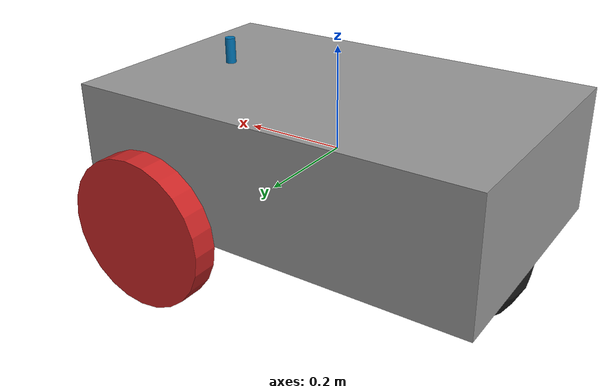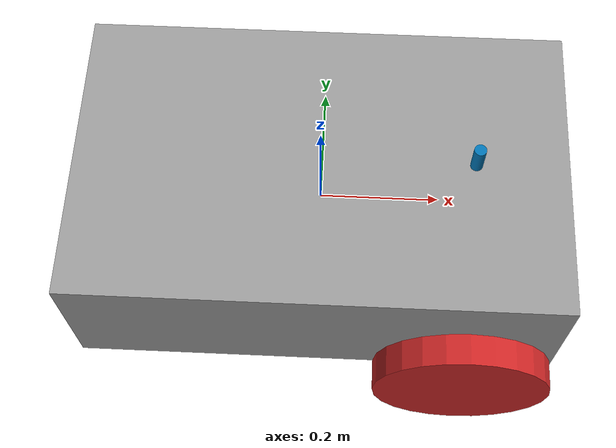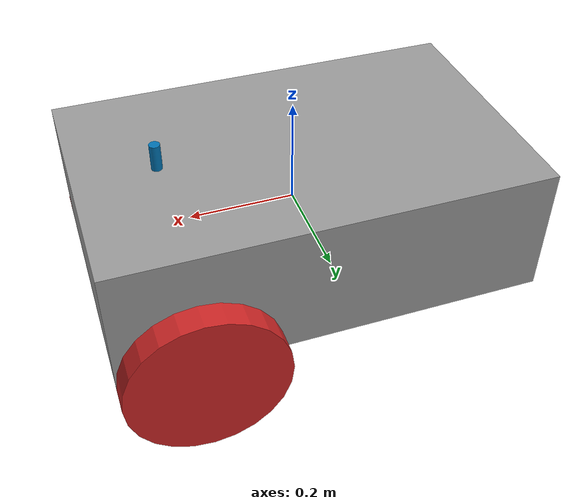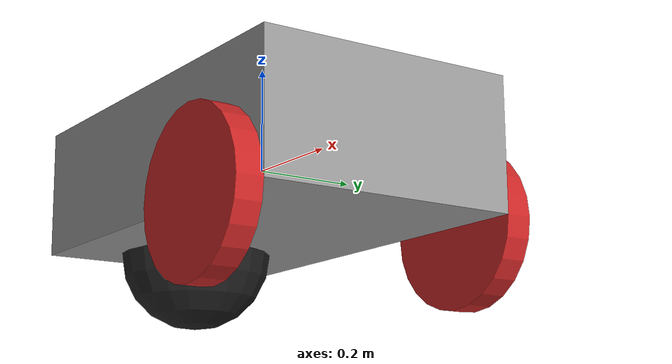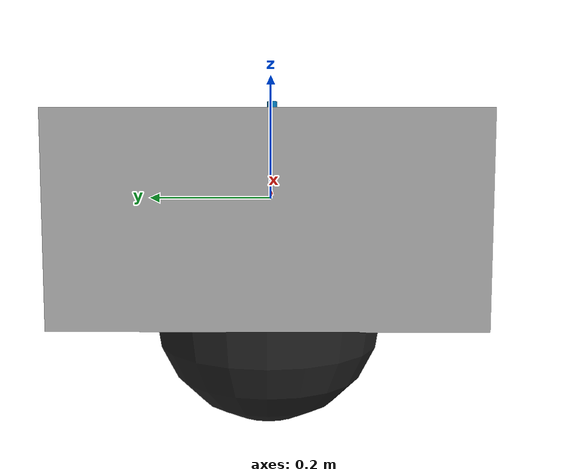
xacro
<?xml version="1.0"?>
<robot xmlns:xacro="http://www.ros.org/wiki/xacro" name="my_mobile">

  <!-- xacro properties -->
  <xacro:property name="chassis_length" value="0.8"/>
  <xacro:property name="chassis_width" value="0.5"/>
  <xacro:property name="chassis_height" value="0.25"/>
  <xacro:property name="wheel_height" value="0.05"/>
  <xacro:property name="wheel_radius" value="0.15"/>
  <xacro:property name="caster_radius" value="0.15"/>
  <xacro:property name="wheels_front_offset" value="0.25"/>
  <xacro:property name="caster_back_offset" value="0.25"/>
  <xacro:property name="chassis_mass" value="5.0"/>
  <xacro:property name="caster_mass" value="0.01"/>
  <xacro:property name="wheel_mass" value="1.0"/>

  <!-- materials -->
  <xacro:include filename="materials.xml"/>

  <!-- gazebo properties -->
  <xacro:include filename="gazebo.xml"/>

  <!-- links -->
  <link name="chassis">
    <visual>
      <geometry>
        <box size="${chassis_length} ${chassis_width} ${chassis_height}"/>
      </geometry>
      <origin rpy="0 0 0" xyz="0 0 0"/>
      <material name="grey"/>
    </visual>

    <collision>
      <geometry>
        <box size="${chassis_length} ${chassis_width} ${chassis_height}"/>
      </geometry>
      <origin rpy="0 0 0" xyz="0 0 0"/>
    </collision>

    <inertial>
      <mass value="${chassis_mass}"/>
      <inertia ixx="0.01" iyy="0.01" izz="0.01" ixy="0" ixz="0" iyz="0"/>
    </inertial>
  </link>

  <link name="caster">
    <visual>
      <geometry>
        <sphere radius="${caster_radius}"/>
      </geometry>
      <origin rpy="0 0 0" xyz="0 0 0"/>
      <material name="black"/>
    </visual>

    <collision>
      <geometry>
        <sphere radius="${caster_radius}"/>
      </geometry>
      <origin rpy="0 0 0" xyz="0 0 0"/>
      <surface>
        <friction>
          <ode>
            <mu>0</mu>
            <mu2>0</mu2>
            <slip1>1.0</slip1>
            <slip2>1.0</slip2>
          </ode>
        </friction>
      </surface>
    </collision>

    <inertial>
      <mass value="${caster_mass}"/>
      <inertia ixx="1e-6" iyy="1e-6" izz="1e-6" ixy="0" ixz="0" iyz="0"/>
    </inertial>
  </link>

  <link name="left_wheel">
    <visual>
      <geometry>
        <cylinder length="${wheel_height}" radius="${wheel_radius}"/>
      </geometry>
      <origin rpy="0 0 0" xyz="0 0 ${wheel_height/2}"/>
      <material name="red"/>
    </visual>

    <collision>
      <geometry>
        <cylinder length="${wheel_height}" radius="${wheel_radius}"/>
      </geometry>
      <origin rpy="0 0 0" xyz="0 0 ${wheel_height/2}"/>
      <surface>
        <friction>
          <ode>
            <mu>100000</mu>
            <mu2>100000</mu2>
            <slip1>0</slip1>
            <slip2>0</slip2>
          </ode>
        </friction>
      </surface>
    </collision>

    <inertial>
      <mass value="${wheel_mass}"/>
      <inertia ixx="0.001" iyy="0.001" izz="0.001" ixy="0" ixz="0" iyz="0"/>
    </inertial>
  </link>

  <link name="right_wheel">
    <visual>
      <geometry>
        <cylinder length="${wheel_height}" radius="${wheel_radius}"/>
      </geometry>
      <origin rpy="0 0 0" xyz="0 0 ${-wheel_height/2}"/>
      <material name="red"/>
    </visual>

    <collision>
      <geometry>
        <cylinder length="${wheel_height}" radius="${wheel_radius}"/>
      </geometry>
      <origin rpy="0 0 0" xyz="0 0 ${-wheel_height/2}"/>
      <surface>
        <friction>
          <ode>
            <mu>100000</mu>
            <mu2>100000</mu2>
            <slip1>0</slip1>
            <slip2>0</slip2>
          </ode>
        </friction>
      </surface>
    </collision>

    <inertial>
      <mass value="${wheel_mass}"/>
      <inertia ixx="0.001" iyy="0.001" izz="0.001" ixy="0" ixz="0" iyz="0"/>
    </inertial>
  </link>

  <link name="laser_link">
    <visual>
      <geometry>
        <cylinder length="0.05" radius="0.01"/>
      </geometry>
      <origin rpy="0 0 0" xyz="0 0 -0.026"/>
    </visual>
    <inertial>
      <mass value="1e-3"/>
      <inertia ixx="1e-8" iyy="1e-8" izz="1e-8" ixy="0" ixz="0" iyz="0"/>
    </inertial>
  </link>

  <!-- joints -->
  <joint name="caster_joint" type="fixed">
    <parent link="chassis"/>
    <child link="caster"/>
    <origin rpy="0 0 0" xyz="${-caster_back_offset} 0 ${-chassis_height/2}"/>
  </joint>

  <joint name="left_wheel_joint" type="continuous">
    <parent link="chassis"/>
    <child link="left_wheel"/>
    <origin rpy="-1.57 0 0" xyz="${wheels_front_offset} ${chassis_width/2} ${-chassis_height/2}"/>
    <axis xyz="0 0 1"/>
    <limit velocity="10.0" effort="1000.0"/>
    <dynamics damping="1" friction="100.0"/>
  </joint>

  <joint name="right_wheel_joint" type="continuous">
    <parent link="chassis"/>
    <child link="right_wheel"/>
    <origin rpy="-1.57 0 0" xyz="${wheels_front_offset} ${-chassis_width/2} ${-chassis_height/2}"/>
    <axis xyz="0 0 1"/>
    <limit velocity="10.0" effort="1000.0"/>
    <dynamics damping="1" friction="100.0"/>
  </joint>

  <joint name="laser_joint" type="fixed">
    <parent link="chassis"/>
    <child link="laser_link"/>
    <origin rpy="0 0 0" xyz="${wheels_front_offset} 0 ${chassis_height/2+0.051}"/>
  </joint>

  <!-- transmissions -->
  <transmission name="left_wheel_trans">
    <type>transmission_interface/SimpleTransmission</type>
    <joint name="left_wheel_joint">
      <hardwareInterface>hardware_interface/VelocityJointInterface</hardwareInterface>
    </joint>
    <actuator name="left_wheel_motor">
      <hardwareInterface>hardware_interface/VelocityJointInterface</hardwareInterface>
      <mechanicalReduction>1</mechanicalReduction>
    </actuator>
  </transmission>

  <transmission name="right_wheel_trans">
    <type>transmission_interface/SimpleTransmission</type>
    <joint name="right_wheel_joint">
      <hardwareInterface>hardware_interface/VelocityJointInterface</hardwareInterface>
    </joint>
    <actuator name="right_wheel_motor">
      <hardwareInterface>hardware_interface/VelocityJointInterface</hardwareInterface>
      <mechanicalReduction>1</mechanicalReduction>
    </actuator>
  </transmission>

</robot>
